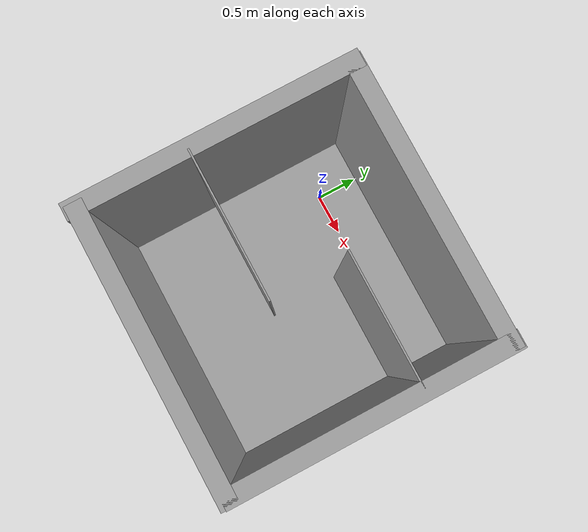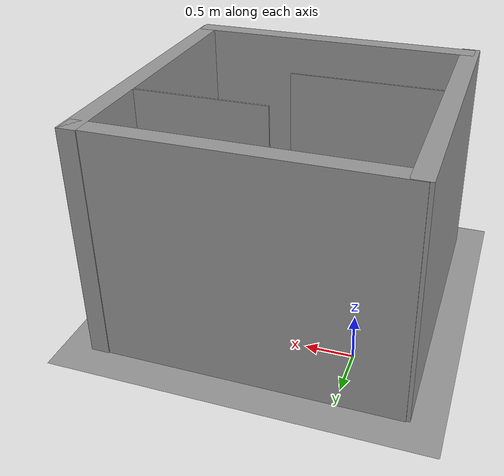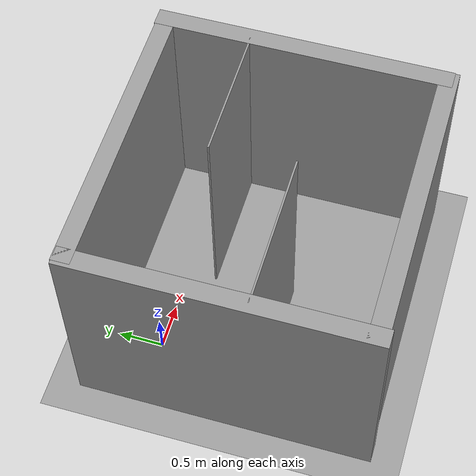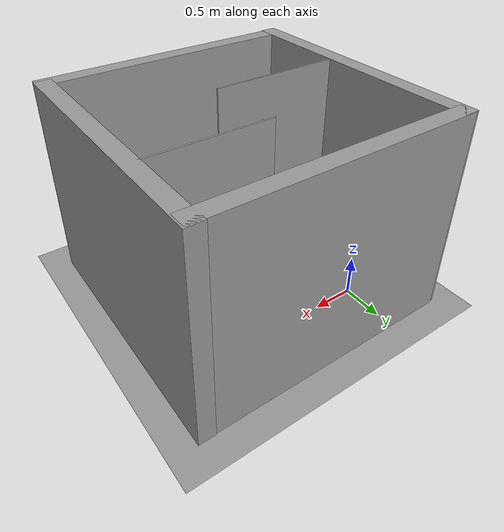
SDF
<?xml version="1.0" ?>
<sdf version="1.4">
  <world name="default">
      <model name='ground_plane_0'>
        <static>1</static>
        <link name='link'>
          <collision name='collision'>
            <geometry>
              <plane>
                <normal>0 0 1</normal>
                <size>100 100</size>
              </plane>
            </geometry>
            <surface>
              <friction>
                <ode>
                  <mu>100</mu>
                  <mu2>50</mu2>
                </ode>
              </friction>
              <bounce/>
              <contact>
                <ode/>
              </contact>
            </surface>
            <max_contacts>10</max_contacts>
          </collision>
          <visual name='visual'>
            <cast_shadows>0</cast_shadows>
            <geometry>
              <plane>
                <normal>0 0 1</normal>
                <size>100 100</size>
              </plane>
            </geometry>
            <material>
              <script>
                <uri>file://media/materials/scripts/gazebo.material</uri>
                <name>Gazebo/Grey</name>
              </script>
            </material>
            <transparency>0.5</transparency>
          </visual>
          <velocity_decay>
            <linear>0</linear>
            <angular>0</angular>
          </velocity_decay>
          <self_collide>0</self_collide>
          <kinematic>0</kinematic>
          <gravity>1</gravity>
        </link>
        <pose>0.497681 0 0 0 -0 0</pose>
      </model>
    <include>
      <uri>model://FinalProjectMap</uri>
      <pose>4 2 0 0 0 0</pose>
      <name>FinalProjectMap</name>
    </include>
  </world>
</sdf>

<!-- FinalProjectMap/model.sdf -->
<sdf version='1.4'>
  <model name='wtfWALL'>
    <link name='Wall_16'>
      <collision name='Wall_16_Collision'>
        <geometry>
          <box>
            <size>3.25 0.2 2.5</size>
          </box>
        </geometry>
        <pose>0 0 1.25 0 -0 0</pose>
      </collision>
      <visual name='Wall_16_Visual'>
        <pose>0 0 1.25 0 -0 0</pose>
        <geometry>
          <box>
            <size>3.25 0.2 2.5</size>
          </box>
        </geometry>
        <material>
          <script>
            <uri>file://media/materials/scripts/gazebo.material</uri>
            <name>Gazebo/Grey</name>
          </script>
        </material>
      </visual>
      <velocity_decay>
        <linear>0</linear>
        <angular>0</angular>
      </velocity_decay>
      <pose>-3.055 -1.387 0 0 -0 0</pose>
    </link>
    <link name='Wall_21'>
      <collision name='Wall_21_Collision'>
        <geometry>
          <box>
            <size>3.2 0.2 2.5</size>
          </box>
        </geometry>
        <pose>0 0 1.25 0 -0 0</pose>
      </collision>
      <visual name='Wall_21_Visual'>
        <pose>0 0 1.25 0 -0 0</pose>
        <geometry>
          <box>
            <size>3.2 0.2 2.5</size>
          </box>
        </geometry>
        <material>
          <script>
            <uri>file://media/materials/scripts/gazebo.material</uri>
            <name>Gazebo/Grey</name>
          </script>
        </material>
      </visual>
      <velocity_decay>
        <linear>0</linear>
        <angular>0</angular>
      </velocity_decay>
      <pose>-1.51038 -2.87696 0 0 0 -1.5708</pose>
    </link>
    <link name='Wall_23'>
      <collision name='Wall_23_Collision'>
        <geometry>
          <box>
            <size>3.25 0.2 2.5</size>
          </box>
        </geometry>
        <pose>0 0 1.25 0 -0 0</pose>
      </collision>
      <visual name='Wall_23_Visual'>
        <pose>0 0 1.25 0 -0 0</pose>
        <geometry>
          <box>
            <size>3.25 0.2 2.5</size>
          </box>
        </geometry>
        <material>
          <script>
            <uri>file://media/materials/scripts/gazebo.material</uri>
            <name>Gazebo/Grey</name>
          </script>
        </material>
      </visual>
      <velocity_decay>
        <linear>0</linear>
        <angular>0</angular>
      </velocity_decay>
      <pose>-3.04538 -4.42696 0 0 -0 3.14159</pose>
    </link>
    <link name='Wall_28'>
      <collision name='Wall_28_Collision'>
        <geometry>
          <box>
            <size>1.67 0.02 2.5</size>
          </box>
        </geometry>
        <pose>0 0 1.25 0 -0 0</pose>
      </collision>
      <visual name='Wall_28_Visual'>
        <pose>0 0 1.25 0 -0 0</pose>
        <geometry>
          <box>
            <size>1.67 0.02 2.5</size>
          </box>
        </geometry>
        <material>
          <script>
            <uri>file://media/materials/scripts/gazebo.material</uri>
            <name>Gazebo/Grey</name>
          </script>
        </material>
      </visual>
      <velocity_decay>
        <linear>0</linear>
        <angular>0</angular>
      </velocity_decay>
      <pose>-3.77538 -3.20695 0 0 -0 0</pose>
    </link>
    <link name='Wall_34'>
      <collision name='Wall_34_Collision'>
        <geometry>
          <box>
            <size>1.49 0.02 2.5</size>
          </box>
        </geometry>
        <pose>0 0 1.25 0 -0 0</pose>
      </collision>
      <visual name='Wall_34_Visual'>
        <pose>0 0 1.25 0 -0 0</pose>
        <geometry>
          <box>
            <size>1.49 0.02 2.5</size>
          </box>
        </geometry>
        <material>
          <script>
            <uri>file://media/materials/scripts/gazebo.material</uri>
            <name>Gazebo/Grey</name>
          </script>
        </material>
      </visual>
      <velocity_decay>
        <linear>0</linear>
        <angular>0</angular>
      </velocity_decay>
      <pose>-2.275 -2.317 0 0 -0 3.14159</pose>
    </link>
    <link name='Wall_5'>
      <collision name='Wall_5_Collision'>
        <geometry>
          <box>
            <size>3.25 0.2 2.5</size>
          </box>
        </geometry>
        <pose>0 0 1.25 0 -0 0</pose>
      </collision>
      <visual name='Wall_5_Visual'>
        <pose>0 0 1.25 0 -0 0</pose>
        <geometry>
          <box>
            <size>3.25 0.2 2.5</size>
          </box>
        </geometry>
        <material>
          <script>
            <uri>file://media/materials/scripts/gazebo.material</uri>
            <name>Gazebo/Grey</name>
          </script>
        </material>
      </visual>
      <velocity_decay>
        <linear>0</linear>
        <angular>0</angular>
      </velocity_decay>
      <pose>-4.62 -2.922 0 0 -0 1.5708</pose>
    </link>
    <static>1</static>
  </model>
</sdf>
